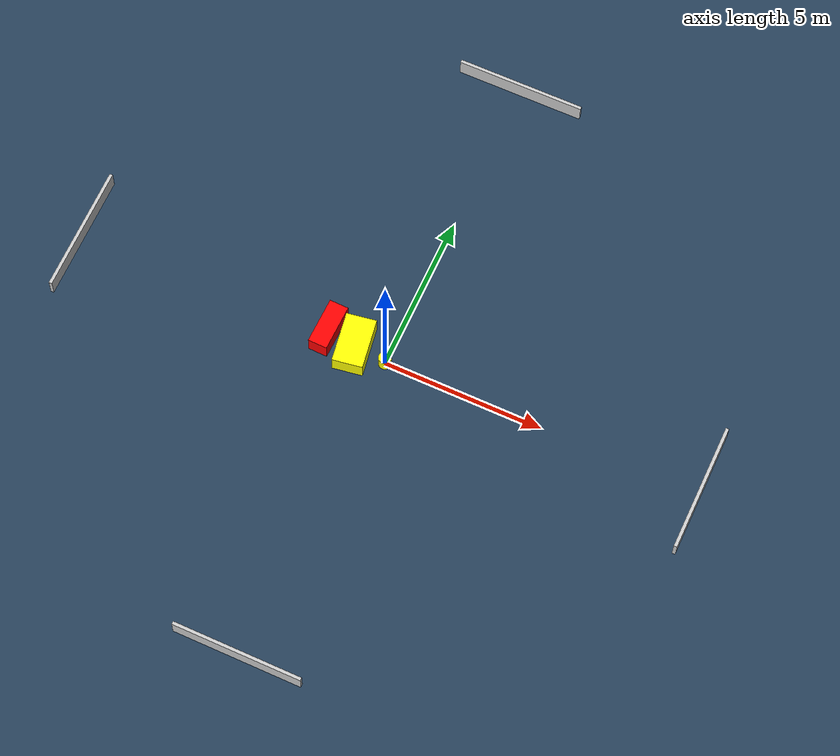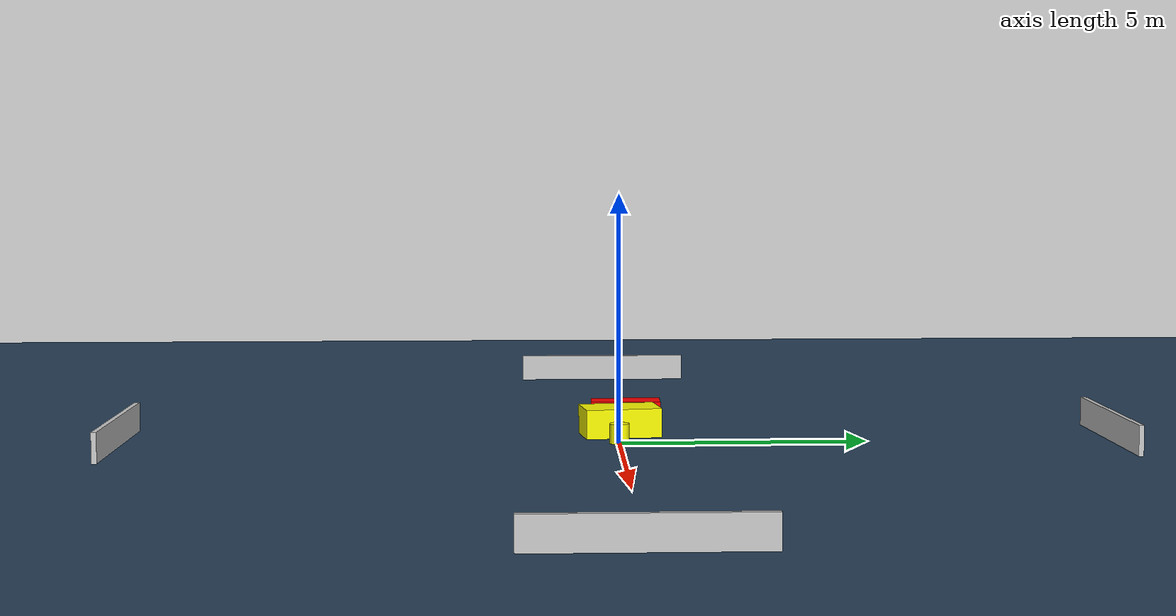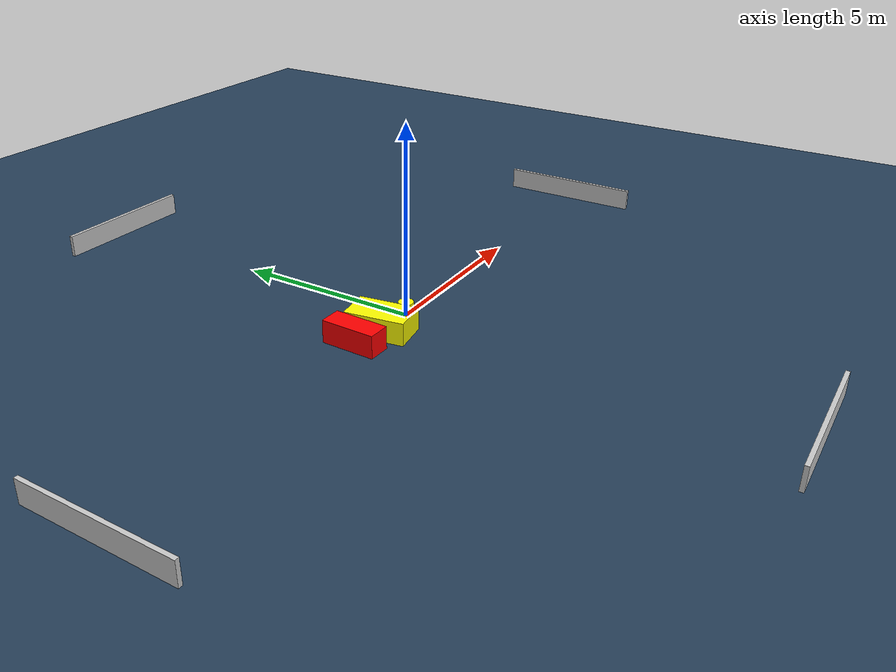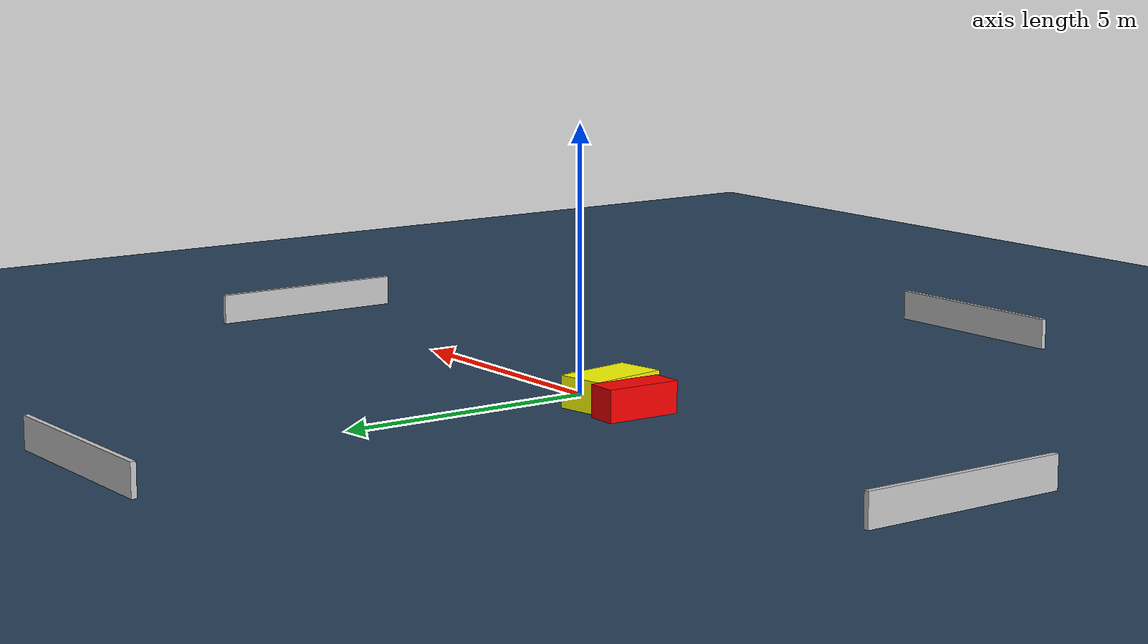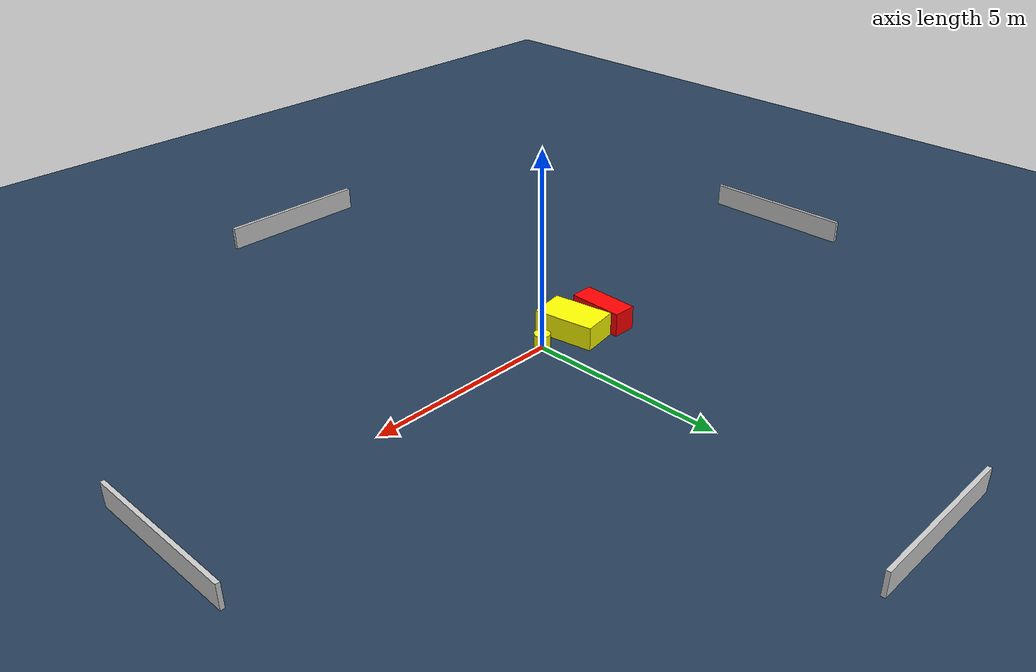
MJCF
<?xml version="1.0" ?>
<mujoco model="generated_environment">
  <option timestep="0.01" integrator="RK4" cone="elliptic"/>
  <default>
    <geom density="1"/>
  </default>
  <asset>
    <texture builtin="gradient" height="3072" name="skybox" rgb1="0.3 0.5 0.7" rgb2="0 0 0" type="skybox" width="512"/>
    <texture builtin="checker" height="300" name="groundplane" rgb1="0.2 0.3 0.4" rgb2="0.1 0.2 0.3" type="2d" width="300"/>
    <material name="groundplane" reflectance="0.2" texrepeat="5 5" texture="groundplane"/>
  </asset>
  <worldbody>
    <light dir="0 0 -1" directional="true" pos="0 0 1.5"/>
    <geom condim="3" friction="0.5 0.005 0.001" material="groundplane" name="floor" pos="0 0 0" size="0 0 0.05" type="plane"/>
    <body name="walls">
      <geom name="wall_1" condim="4" pos="-10.0 0.0 0.3" rgba="0.800000011920929 0.800000011920929 0.800000011920929 1.0" size="0.05 2.0 0.3" type="box"/>
      <geom name="wall_2" condim="4" pos="10.0 0.0 0.3" rgba="0.800000011920929 0.800000011920929 0.800000011920929 1.0" size="0.05 2.0 0.3" type="box"/>
      <geom name="wall_3" condim="4" pos="0.0 -10.0 0.3" rgba="0.800000011920929 0.800000011920929 0.800000011920929 1.0" size="2.0 0.05 0.3" type="box"/>
      <geom name="wall_4" condim="4" pos="0.0 10.0 0.3" rgba="0.800000011920929 0.800000011920929 0.800000011920929 1.0" size="2.0 0.05 0.3" type="box"/>
    </body>
    <body name="robot">
      <joint name="joint_x" type="slide" pos="0 0 0" axis="1 0 0"/>
      <joint name="joint_y" type="slide" pos="0 0 0" axis="0 1 0"/>
      <geom name="robot" type="cylinder" pos="0.0 0.0 0.2" size="0.2 0.2 0.0" mass="5.0" friction="1.0 0.005 0.0001" condim="4" rgba="1.0 1.0 0.0 1.0"/>
    </body>
    <body name="obstacle_1_movable">
      <geom name="obstacle_1_movable" condim="4" pos="-1.0186494956947778 0.0619975850954775 0.3" euler="0 0 98.86203296276479" friction="0.0 0.005 0.001" rgba="1.0 1.0 0.0 1.0" size="0.785481898705835 0.46832145369190653 0.3" type="box" mass="0.1"/>
      <joint type="free"/>
    </body>
    <body name="obstacle_2_static">
      <geom name="obstacle_2_static" condim="4" pos="-1.9366906854332844 0.21579868978724487 0.3" euler="0 0 358.54206212888647" friction="0.0 0.005 0.001" rgba="1.0 0.0 0.0 1.0" size="0.29833548002485455 0.7225272563293674 0.3" type="box"/>
    </body>
  </worldbody>
  <actuator>
    <motor name="actuator_x" joint="joint_x" gear="1" ctrlrange="-1 1"/>
    <motor name="actuator_y" joint="joint_y" gear="1" ctrlrange="-1 1"/>
  </actuator>
</mujoco>
